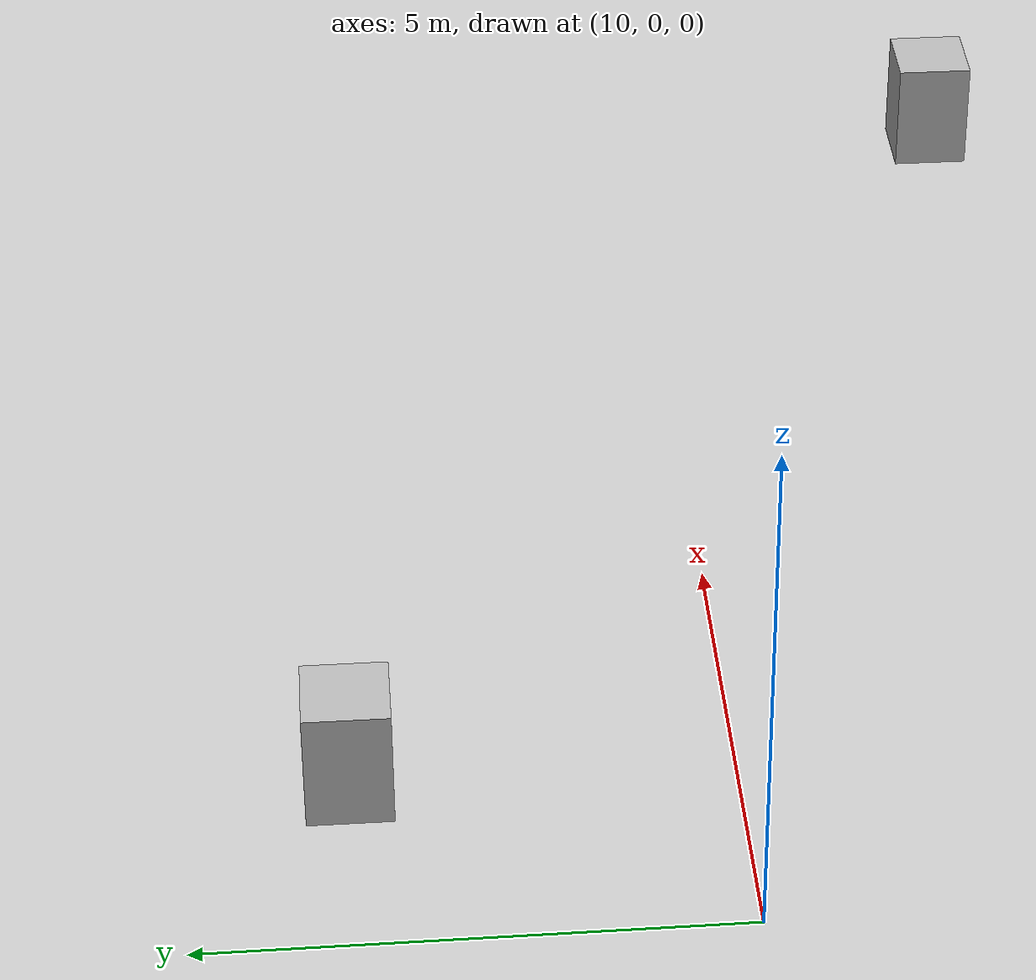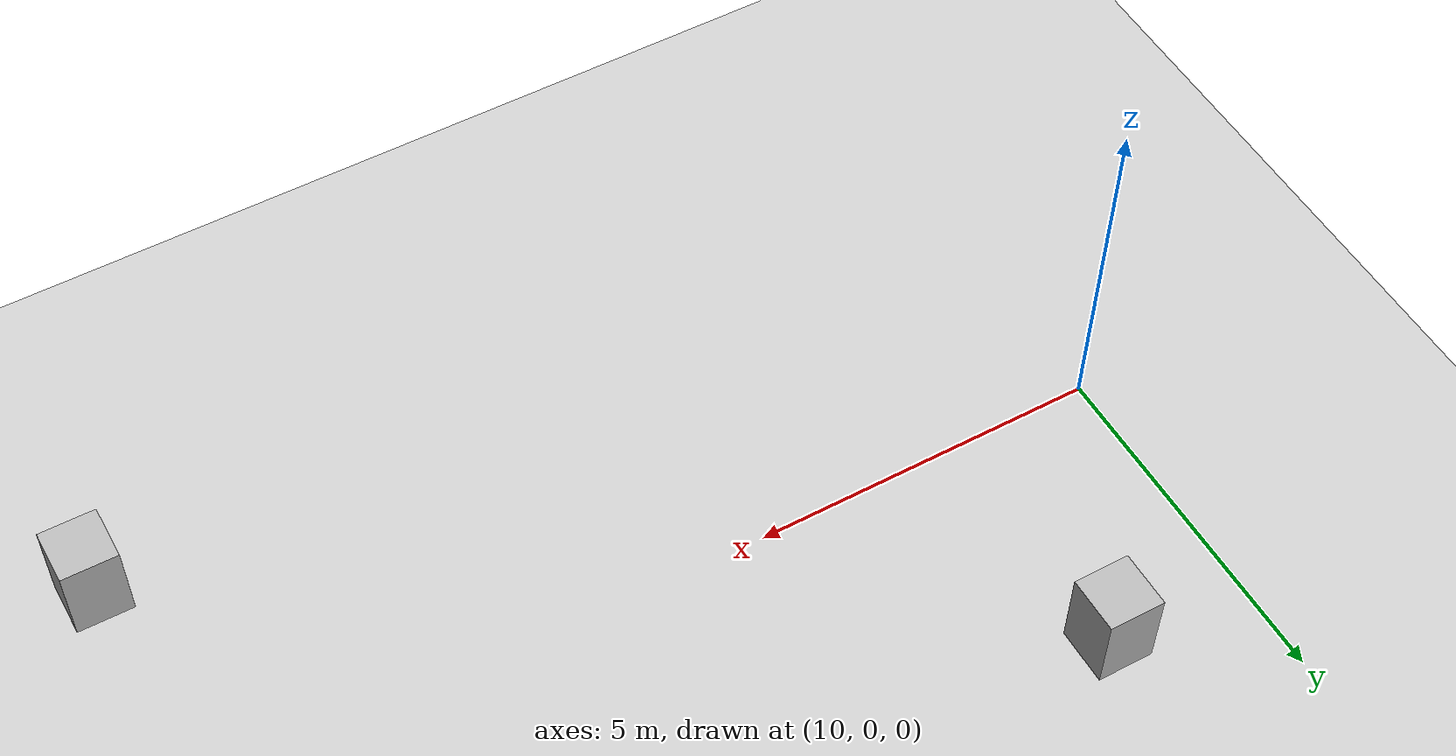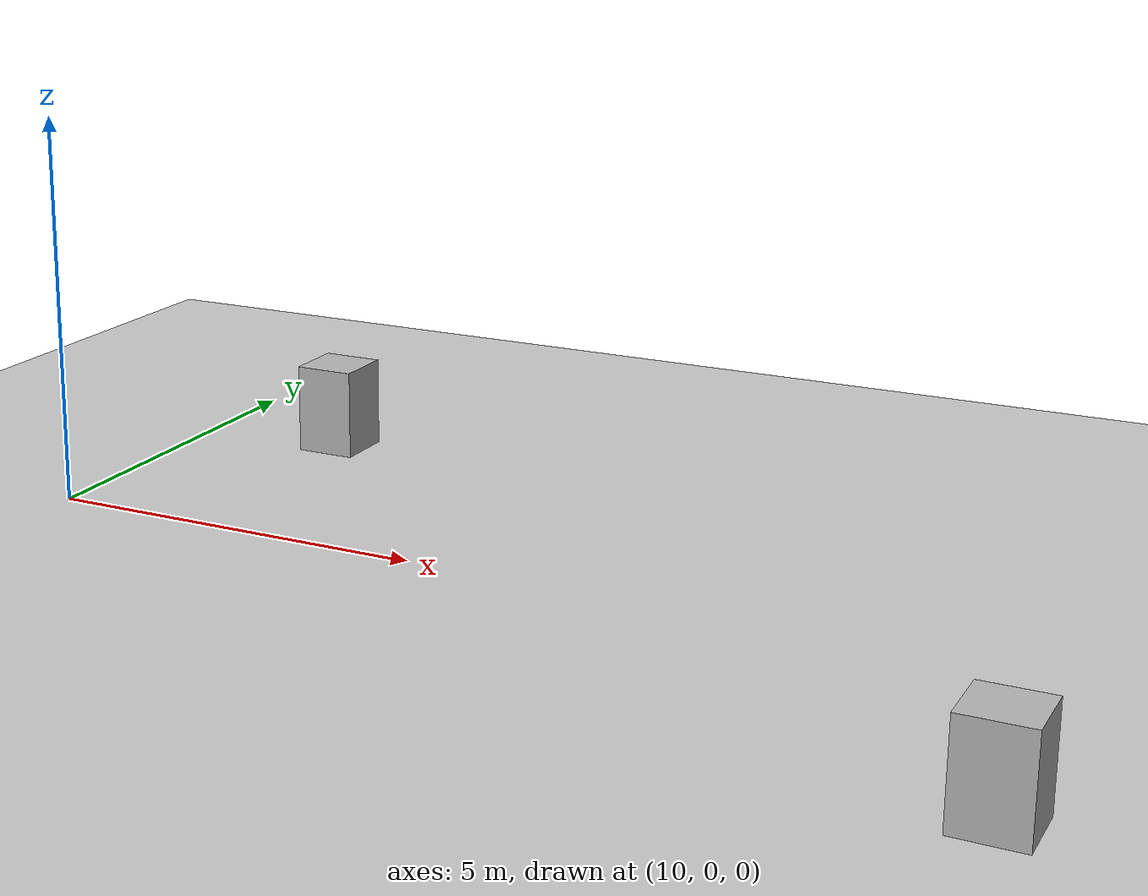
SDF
<?xml version="1.0"?>
<sdf version="1.6">
  <world name="v2-04e3-cruise-s4721">
    <gravity>0 0 -9.81</gravity>
    <physics name="v2_deterministic" type="ode">
      <max_step_size>0.002</max_step_size>
      <real_time_update_rate>500</real_time_update_rate>
    </physics>
    <include>
      <uri>model://sun</uri>
    </include>
    <include>
      <uri>model://ground_plane</uri>
    </include>
    <model name="cruise-left">
      <static>true</static>
      <pose>11.993509207 3.546300867 0.600000000 0 0 -0.003175278</pose>
      <link name="link">
        <collision name="collision">
          <geometry>
            <box>
              <size>0.800000 0.800000 1.200000</size>
            </box>
          </geometry>
        </collision>
        <visual name="visual">
          <geometry>
            <box>
              <size>0.800000 0.800000 1.200000</size>
            </box>
          </geometry>
        </visual>
      </link>
    </model>
    <model name="cruise-right">
      <static>true</static>
      <pose>22.969658850 -3.465018967 0.600000000 0 0 -0.006440687</pose>
      <link name="link">
        <collision name="collision">
          <geometry>
            <box>
              <size>0.800000 0.800000 1.200000</size>
            </box>
          </geometry>
        </collision>
        <visual name="visual">
          <geometry>
            <box>
              <size>0.800000 0.800000 1.200000</size>
            </box>
          </geometry>
        </visual>
      </link>
    </model>
  </world>
</sdf>
